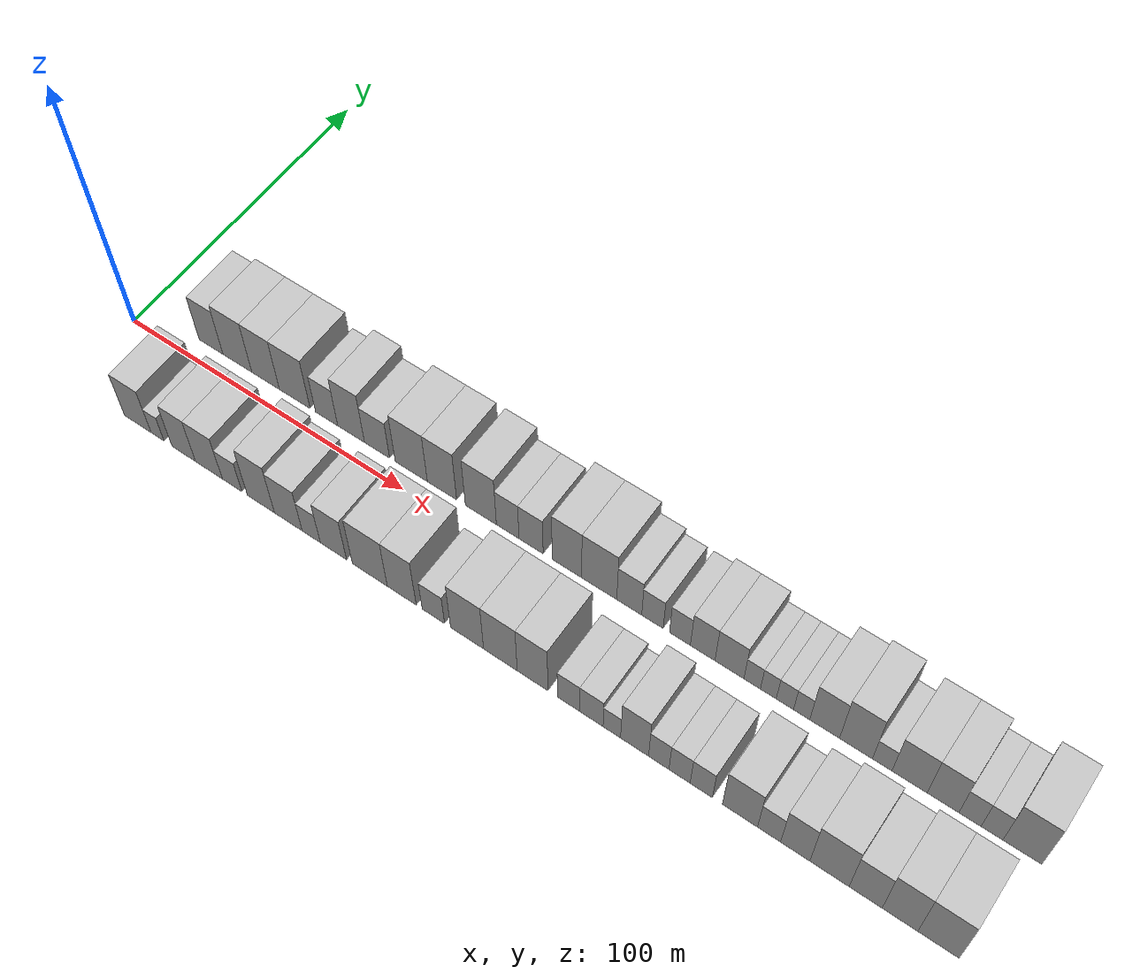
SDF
<sdf version="1.6">
 <world name="default">
  <scene>
   <sky><clouds><speed>12</speed></clouds></sky>
   <ambient>0.4 0.4 0.4 1</ambient>
   <background>0.7 0.7 0.7 1</background>
   <shadows>1</shadows>
  </scene>
  <gravity>0 0 -9.8066</gravity>
  <magnetic_field>6e-06 2.3e-05 -4.2e-05</magnetic_field>
  <physics default="0" name="default_physics" type="ode">
   <ode>
    <solver>
     <type>quick</type>
     <iters>10</iters>
     <sor>1.0</sor>
     <use_dynamic_moi_rescaling>0</use_dynamic_moi_rescaling>
    </solver>
    <constraints>
     <cfm>0</cfm>
     <erp>0.2</erp>
     <contact_max_correcting_vel>100</contact_max_correcting_vel>
     <contact_surface_layer>0.001</contact_surface_layer>
    </constraints>
   </ode>
   <max_step_size>0.004</max_step_size>
   <real_time_factor>1</real_time_factor>
   <real_time_update_rate>250</real_time_update_rate>
  </physics>
  <light name="sun" type="directional">
   <pose>0 0 10 0 0 0</pose>
   <diffuse>0.8 0.8 0.8 1</diffuse>
   <specular>0.2 0.2 0.2 1</specular>
   <attenuation>
    <range>1000</range>
    <constant>0.9</constant>
    <linear>0.01</linear>
    <quadratic>0.001</quadratic>
   </attenuation>
   <direction>-0.5 0.1 -0.9</direction>
  </light>
  <model name="building_1">
   <static>1</static>
   <pose>24.5743 16.0000 0 0.000000 0.000000 1.570796</pose>
   <link name="link">
    <pose>0 0 10.50 0 0 0</pose>
    <collision name="collision"><geometry><box><size>20.0000 9.1486 21.0000</size></box></geometry></collision>
    <visual name="visual">
     <cast_shadows>0</cast_shadows>
     <geometry><box><size>20.0000 9.1486 21.0000</size></box></geometry>
     <material>
      <script>
       <uri>model://HANNAS_wall/materials/scripts</uri>
       <uri>model://HANNAS_wall/materials/textures</uri>
       <name>vrc/HANNAS_wall</name>
      </script>
     </material>
    </visual>
   </link>
  </model>
  <model name="building_2">
   <static>1</static>
   <pose>34.6163 16.0000 0 0.000000 0.000000 1.570796</pose>
   <link name="link">
    <pose>0 0 12.00 0 0 0</pose>
    <collision name="collision"><geometry><box><size>20.0000 10.9354 24.0000</size></box></geometry></collision>
    <visual name="visual">
     <cast_shadows>0</cast_shadows>
     <geometry><box><size>20.0000 10.9354 24.0000</size></box></geometry>
     <material>
      <script>
       <uri>model://HANNAS_wall/materials/scripts</uri>
       <uri>model://HANNAS_wall/materials/textures</uri>
       <name>vrc/HANNAS_wall</name>
      </script>
     </material>
    </visual>
   </link>
  </model>
  <model name="building_3">
   <static>1</static>
   <pose>45.2506 16.0000 0 0.000000 0.000000 1.570796</pose>
   <link name="link">
    <pose>0 0 12.00 0 0 0</pose>
    <collision name="collision"><geometry><box><size>20.0000 10.3332 24.0000</size></box></geometry></collision>
    <visual name="visual">
     <cast_shadows>0</cast_shadows>
     <geometry><box><size>20.0000 10.3332 24.0000</size></box></geometry>
     <material>
      <script>
       <uri>model://HANNAS_wall/materials/scripts</uri>
       <uri>model://HANNAS_wall/materials/textures</uri>
       <name>vrc/HANNAS_wall</name>
      </script>
     </material>
    </visual>
   </link>
  </model>
  <model name="building_4">
   <static>1</static>
   <pose>56.0950 16.0000 0 0.000000 0.000000 1.570796</pose>
   <link name="link">
    <pose>0 0 12.00 0 0 0</pose>
    <collision name="collision"><geometry><box><size>20.0000 11.3557 24.0000</size></box></geometry></collision>
    <visual name="visual">
     <cast_shadows>0</cast_shadows>
     <geometry><box><size>20.0000 11.3557 24.0000</size></box></geometry>
     <material>
      <script>
       <uri>model://HANNAS_wall/materials/scripts</uri>
       <uri>model://HANNAS_wall/materials/textures</uri>
       <name>vrc/HANNAS_wall</name>
      </script>
     </material>
    </visual>
   </link>
  </model>
  <model name="building_5">
   <static>1</static>
   <pose>67.8127 16.0000 0 0.000000 0.000000 1.570796</pose>
   <link name="link">
    <pose>0 0 9.00 0 0 0</pose>
    <collision name="collision"><geometry><box><size>20.0000 8.0796 18.0000</size></box></geometry></collision>
    <visual name="visual">
     <cast_shadows>0</cast_shadows>
     <geometry><box><size>20.0000 8.0796 18.0000</size></box></geometry>
     <material>
      <script>
       <uri>model://HANNAS_wall/materials/scripts</uri>
       <uri>model://HANNAS_wall/materials/textures</uri>
       <name>vrc/HANNAS_wall</name>
      </script>
     </material>
    </visual>
   </link>
  </model>
  <model name="building_6">
   <static>1</static>
   <pose>76.6792 16.0000 0 0.000000 0.000000 1.570796</pose>
   <link name="link">
    <pose>0 0 12.00 0 0 0</pose>
    <collision name="collision"><geometry><box><size>20.0000 9.6535 24.0000</size></box></geometry></collision>
    <visual name="visual">
     <cast_shadows>0</cast_shadows>
     <geometry><box><size>20.0000 9.6535 24.0000</size></box></geometry>
     <material>
      <script>
       <uri>model://HANNAS_wall/materials/scripts</uri>
       <uri>model://HANNAS_wall/materials/textures</uri>
       <name>vrc/HANNAS_wall</name>
      </script>
     </material>
    </visual>
   </link>
  </model>
  <model name="building_7">
   <static>1</static>
   <pose>85.9898 16.0000 0 0.000000 0.000000 1.570796</pose>
   <link name="link">
    <pose>0 0 9.00 0 0 0</pose>
    <collision name="collision"><geometry><box><size>20.0000 8.9678 18.0000</size></box></geometry></collision>
    <visual name="visual">
     <cast_shadows>0</cast_shadows>
     <geometry><box><size>20.0000 8.9678 18.0000</size></box></geometry>
     <material>
      <script>
       <uri>model://HANNAS_wall/materials/scripts</uri>
       <uri>model://HANNAS_wall/materials/textures</uri>
       <name>vrc/HANNAS_wall</name>
      </script>
     </material>
    </visual>
   </link>
  </model>
  <model name="building_8">
   <static>1</static>
   <pose>98.1138 16.0000 0 0.000000 0.000000 1.570796</pose>
   <link name="link">
    <pose>0 0 12.00 0 0 0</pose>
    <collision name="collision"><geometry><box><size>20.0000 11.2802 24.0000</size></box></geometry></collision>
    <visual name="visual">
     <cast_shadows>0</cast_shadows>
     <geometry><box><size>20.0000 11.2802 24.0000</size></box></geometry>
     <material>
      <script>
       <uri>model://HANNAS_wall/materials/scripts</uri>
       <uri>model://HANNAS_wall/materials/textures</uri>
       <name>vrc/HANNAS_wall</name>
      </script>
     </material>
    </visual>
   </link>
  </model>
  <model name="building_9">
   <static>1</static>
   <pose>108.8471 16.0000 0 0.000000 0.000000 1.570796</pose>
   <link name="link">
    <pose>0 0 12.00 0 0 0</pose>
    <collision name="collision"><geometry><box><size>20.0000 10.1864 24.0000</size></box></geometry></collision>
    <visual name="visual">
     <cast_shadows>0</cast_shadows>
     <geometry><box><size>20.0000 10.1864 24.0000</size></box></geometry>
     <material>
      <script>
       <uri>model://HANNAS_wall/materials/scripts</uri>
       <uri>model://HANNAS_wall/materials/textures</uri>
       <name>vrc/HANNAS_wall</name>
      </script>
     </material>
    </visual>
   </link>
  </model>
  <model name="building_10">
   <static>1</static>
   <pose>122.2387 16.0000 0 0.000000 0.000000 1.570796</pose>
   <link name="link">
    <pose>0 0 12.00 0 0 0</pose>
    <collision name="collision"><geometry><box><size>20.0000 10.5969 24.0000</size></box></geometry></collision>
    <visual name="visual">
     <cast_shadows>0</cast_shadows>
     <geometry><box><size>20.0000 10.5969 24.0000</size></box></geometry>
     <material>
      <script>
       <uri>model://HANNAS_wall/materials/scripts</uri>
       <uri>model://HANNAS_wall/materials/textures</uri>
       <name>vrc/HANNAS_wall</name>
      </script>
     </material>
    </visual>
   </link>
  </model>
  <model name="building_11">
   <static>1</static>
   <pose>131.3559 16.0000 0 0.000000 0.000000 1.570796</pose>
   <link name="link">
    <pose>0 0 9.00 0 0 0</pose>
    <collision name="collision"><geometry><box><size>20.0000 7.6374 18.0000</size></box></geometry></collision>
    <visual name="visual">
     <cast_shadows>0</cast_shadows>
     <geometry><box><size>20.0000 7.6374 18.0000</size></box></geometry>
     <material>
      <script>
       <uri>model://HANNAS_wall/materials/scripts</uri>
       <uri>model://HANNAS_wall/materials/textures</uri>
       <name>vrc/HANNAS_wall</name>
      </script>
     </material>
    </visual>
   </link>
  </model>
  <model name="building_12">
   <static>1</static>
   <pose>139.2092 16.0000 0 0.000000 0.000000 1.570796</pose>
   <link name="link">
    <pose>0 0 9.00 0 0 0</pose>
    <collision name="collision"><geometry><box><size>20.0000 8.0692 18.0000</size></box></geometry></collision>
    <visual name="visual">
     <cast_shadows>0</cast_shadows>
     <geometry><box><size>20.0000 8.0692 18.0000</size></box></geometry>
     <material>
      <script>
       <uri>model://HANNAS_wall/materials/scripts</uri>
       <uri>model://HANNAS_wall/materials/textures</uri>
       <name>vrc/HANNAS_wall</name>
      </script>
     </material>
    </visual>
   </link>
  </model>
  <model name="building_13">
   <static>1</static>
   <pose>151.0744 16.0000 0 0.000000 0.000000 1.570796</pose>
   <link name="link">
    <pose>0 0 12.00 0 0 0</pose>
    <collision name="collision"><geometry><box><size>20.0000 9.6613 24.0000</size></box></geometry></collision>
    <visual name="visual">
     <cast_shadows>0</cast_shadows>
     <geometry><box><size>20.0000 9.6613 24.0000</size></box></geometry>
     <material>
      <script>
       <uri>model://HANNAS_wall/materials/scripts</uri>
       <uri>model://HANNAS_wall/materials/textures</uri>
       <name>vrc/HANNAS_wall</name>
      </script>
     </material>
    </visual>
   </link>
  </model>
  <model name="building_14">
   <static>1</static>
   <pose>161.6284 16.0000 0 0.000000 0.000000 1.570796</pose>
   <link name="link">
    <pose>0 0 12.00 0 0 0</pose>
    <collision name="collision"><geometry><box><size>20.0000 11.4467 24.0000</size></box></geometry></collision>
    <visual name="visual">
     <cast_shadows>0</cast_shadows>
     <geometry><box><size>20.0000 11.4467 24.0000</size></box></geometry>
     <material>
      <script>
       <uri>model://HANNAS_wall/materials/scripts</uri>
       <uri>model://HANNAS_wall/materials/textures</uri>
       <name>vrc/HANNAS_wall</name>
      </script>
     </material>
    </visual>
   </link>
  </model>
  <model name="building_15">
   <static>1</static>
   <pose>171.3655 16.0000 0 0.000000 0.000000 1.570796</pose>
   <link name="link">
    <pose>0 0 9.00 0 0 0</pose>
    <collision name="collision"><geometry><box><size>20.0000 8.0276 18.0000</size></box></geometry></collision>
    <visual name="visual">
     <cast_shadows>0</cast_shadows>
     <geometry><box><size>20.0000 8.0276 18.0000</size></box></geometry>
     <material>
      <script>
       <uri>model://HANNAS_wall/materials/scripts</uri>
       <uri>model://HANNAS_wall/materials/textures</uri>
       <name>vrc/HANNAS_wall</name>
      </script>
     </material>
    </visual>
   </link>
  </model>
  <model name="building_16">
   <static>1</static>
   <pose>178.7961 16.0000 0 0.000000 0.000000 1.570796</pose>
   <link name="link">
    <pose>0 0 7.50 0 0 0</pose>
    <collision name="collision"><geometry><box><size>20.0000 6.8335 15.0000</size></box></geometry></collision>
    <visual name="visual">
     <cast_shadows>0</cast_shadows>
     <geometry><box><size>20.0000 6.8335 15.0000</size></box></geometry>
     <material>
      <script>
       <uri>model://HANNAS_wall/materials/scripts</uri>
       <uri>model://HANNAS_wall/materials/textures</uri>
       <name>vrc/HANNAS_wall</name>
      </script>
     </material>
    </visual>
   </link>
  </model>
  <model name="building_17">
   <static>1</static>
   <pose>187.4880 16.0000 0 0.000000 0.000000 1.570796</pose>
   <link name="link">
    <pose>0 0 7.50 0 0 0</pose>
    <collision name="collision"><geometry><box><size>20.0000 6.5502 15.0000</size></box></geometry></collision>
    <visual name="visual">
     <cast_shadows>0</cast_shadows>
     <geometry><box><size>20.0000 6.5502 15.0000</size></box></geometry>
     <material>
      <script>
       <uri>model://HANNAS_wall/materials/scripts</uri>
       <uri>model://HANNAS_wall/materials/textures</uri>
       <name>vrc/HANNAS_wall</name>
      </script>
     </material>
    </visual>
   </link>
  </model>
  <model name="building_18">
   <static>1</static>
   <pose>194.6058 16.0000 0 0.000000 0.000000 1.570796</pose>
   <link name="link">
    <pose>0 0 9.00 0 0 0</pose>
    <collision name="collision"><geometry><box><size>20.0000 7.6855 18.0000</size></box></geometry></collision>
    <visual name="visual">
     <cast_shadows>0</cast_shadows>
     <geometry><box><size>20.0000 7.6855 18.0000</size></box></geometry>
     <material>
      <script>
       <uri>model://HANNAS_wall/materials/scripts</uri>
       <uri>model://HANNAS_wall/materials/textures</uri>
       <name>vrc/HANNAS_wall</name>
      </script>
     </material>
    </visual>
   </link>
  </model>
  <model name="building_19">
   <static>1</static>
   <pose>202.9166 16.0000 0 0.000000 0.000000 1.570796</pose>
   <link name="link">
    <pose>0 0 9.00 0 0 0</pose>
    <collision name="collision"><geometry><box><size>20.0000 8.9360 18.0000</size></box></geometry></collision>
    <visual name="visual">
     <cast_shadows>0</cast_shadows>
     <geometry><box><size>20.0000 8.9360 18.0000</size></box></geometry>
     <material>
      <script>
       <uri>model://HANNAS_wall/materials/scripts</uri>
       <uri>model://HANNAS_wall/materials/textures</uri>
       <name>vrc/HANNAS_wall</name>
      </script>
     </material>
    </visual>
   </link>
  </model>
  <model name="building_20">
   <static>1</static>
   <pose>209.9119 16.0000 0 0.000000 0.000000 1.570796</pose>
   <link name="link">
    <pose>0 0 6.00 0 0 0</pose>
    <collision name="collision"><geometry><box><size>20.0000 5.0545 12.0000</size></box></geometry></collision>
    <visual name="visual">
     <cast_shadows>0</cast_shadows>
     <geometry><box><size>20.0000 5.0545 12.0000</size></box></geometry>
     <material>
      <script>
       <uri>model://HANNAS_wall/materials/scripts</uri>
       <uri>model://HANNAS_wall/materials/textures</uri>
       <name>vrc/HANNAS_wall</name>
      </script>
     </material>
    </visual>
   </link>
  </model>
  <model name="building_21">
   <static>1</static>
   <pose>214.8417 16.0000 0 0.000000 0.000000 1.570796</pose>
   <link name="link">
    <pose>0 0 6.00 0 0 0</pose>
    <collision name="collision"><geometry><box><size>20.0000 4.8051 12.0000</size></box></geometry></collision>
    <visual name="visual">
     <cast_shadows>0</cast_shadows>
     <geometry><box><size>20.0000 4.8051 12.0000</size></box></geometry>
     <material>
      <script>
       <uri>model://HANNAS_wall/materials/scripts</uri>
       <uri>model://HANNAS_wall/materials/textures</uri>
       <name>vrc/HANNAS_wall</name>
      </script>
     </material>
    </visual>
   </link>
  </model>
  <model name="building_22">
   <static>1</static>
   <pose>219.8590 16.0000 0 0.000000 0.000000 1.570796</pose>
   <link name="link">
    <pose>0 0 6.00 0 0 0</pose>
    <collision name="collision"><geometry><box><size>20.0000 5.2297 12.0000</size></box></geometry></collision>
    <visual name="visual">
     <cast_shadows>0</cast_shadows>
     <geometry><box><size>20.0000 5.2297 12.0000</size></box></geometry>
     <material>
      <script>
       <uri>model://HANNAS_wall/materials/scripts</uri>
       <uri>model://HANNAS_wall/materials/textures</uri>
       <name>vrc/HANNAS_wall</name>
      </script>
     </material>
    </visual>
   </link>
  </model>
  <model name="building_23">
   <static>1</static>
   <pose>224.9013 16.0000 0 0.000000 0.000000 1.570796</pose>
   <link name="link">
    <pose>0 0 6.00 0 0 0</pose>
    <collision name="collision"><geometry><box><size>20.0000 4.8548 12.0000</size></box></geometry></collision>
    <visual name="visual">
     <cast_shadows>0</cast_shadows>
     <geometry><box><size>20.0000 4.8548 12.0000</size></box></geometry>
     <material>
      <script>
       <uri>model://HANNAS_wall/materials/scripts</uri>
       <uri>model://HANNAS_wall/materials/textures</uri>
       <name>vrc/HANNAS_wall</name>
      </script>
     </material>
    </visual>
   </link>
  </model>
  <model name="building_24">
   <static>1</static>
   <pose>231.7651 16.0000 0 0.000000 0.000000 1.570796</pose>
   <link name="link">
    <pose>0 0 10.50 0 0 0</pose>
    <collision name="collision"><geometry><box><size>20.0000 8.8729 21.0000</size></box></geometry></collision>
    <visual name="visual">
     <cast_shadows>0</cast_shadows>
     <geometry><box><size>20.0000 8.8729 21.0000</size></box></geometry>
     <material>
      <script>
       <uri>model://HANNAS_wall/materials/scripts</uri>
       <uri>model://HANNAS_wall/materials/textures</uri>
       <name>vrc/HANNAS_wall</name>
      </script>
     </material>
    </visual>
   </link>
  </model>
  <model name="building_25">
   <static>1</static>
   <pose>241.0345 16.0000 0 0.000000 0.000000 1.570796</pose>
   <link name="link">
    <pose>0 0 12.00 0 0 0</pose>
    <collision name="collision"><geometry><box><size>20.0000 9.6660 24.0000</size></box></geometry></collision>
    <visual name="visual">
     <cast_shadows>0</cast_shadows>
     <geometry><box><size>20.0000 9.6660 24.0000</size></box></geometry>
     <material>
      <script>
       <uri>model://HANNAS_wall/materials/scripts</uri>
       <uri>model://HANNAS_wall/materials/textures</uri>
       <name>vrc/HANNAS_wall</name>
      </script>
     </material>
    </visual>
   </link>
  </model>
  <model name="building_26">
   <static>1</static>
   <pose>248.7030 16.0000 0 0.000000 0.000000 1.570796</pose>
   <link name="link">
    <pose>0 0 6.00 0 0 0</pose>
    <collision name="collision"><geometry><box><size>20.0000 5.6709 12.0000</size></box></geometry></collision>
    <visual name="visual">
     <cast_shadows>0</cast_shadows>
     <geometry><box><size>20.0000 5.6709 12.0000</size></box></geometry>
     <material>
      <script>
       <uri>model://HANNAS_wall/materials/scripts</uri>
       <uri>model://HANNAS_wall/materials/textures</uri>
       <name>vrc/HANNAS_wall</name>
      </script>
     </material>
    </visual>
   </link>
  </model>
  <model name="building_27">
   <static>1</static>
   <pose>256.6299 16.0000 0 0.000000 0.000000 1.570796</pose>
   <link name="link">
    <pose>0 0 10.50 0 0 0</pose>
    <collision name="collision"><geometry><box><size>20.0000 10.1831 21.0000</size></box></geometry></collision>
    <visual name="visual">
     <cast_shadows>0</cast_shadows>
     <geometry><box><size>20.0000 10.1831 21.0000</size></box></geometry>
     <material>
      <script>
       <uri>model://HANNAS_wall/materials/scripts</uri>
       <uri>model://HANNAS_wall/materials/textures</uri>
       <name>vrc/HANNAS_wall</name>
      </script>
     </material>
    </visual>
   </link>
  </model>
  <model name="building_28">
   <static>1</static>
   <pose>266.2097 16.0000 0 0.000000 0.000000 1.570796</pose>
   <link name="link">
    <pose>0 0 10.50 0 0 0</pose>
    <collision name="collision"><geometry><box><size>20.0000 8.9764 21.0000</size></box></geometry></collision>
    <visual name="visual">
     <cast_shadows>0</cast_shadows>
     <geometry><box><size>20.0000 8.9764 21.0000</size></box></geometry>
     <material>
      <script>
       <uri>model://HANNAS_wall/materials/scripts</uri>
       <uri>model://HANNAS_wall/materials/textures</uri>
       <name>vrc/HANNAS_wall</name>
      </script>
     </material>
    </visual>
   </link>
  </model>
  <model name="building_29">
   <static>1</static>
   <pose>273.8102 16.0000 0 0.000000 0.000000 1.570796</pose>
   <link name="link">
    <pose>0 0 7.50 0 0 0</pose>
    <collision name="collision"><geometry><box><size>20.0000 6.2247 15.0000</size></box></geometry></collision>
    <visual name="visual">
     <cast_shadows>0</cast_shadows>
     <geometry><box><size>20.0000 6.2247 15.0000</size></box></geometry>
     <material>
      <script>
       <uri>model://HANNAS_wall/materials/scripts</uri>
       <uri>model://HANNAS_wall/materials/textures</uri>
       <name>vrc/HANNAS_wall</name>
      </script>
     </material>
    </visual>
   </link>
  </model>
  <model name="building_30">
   <static>1</static>
   <pose>279.9654 16.0000 0 0.000000 0.000000 1.570796</pose>
   <link name="link">
    <pose>0 0 7.50 0 0 0</pose>
    <collision name="collision"><geometry><box><size>20.0000 6.0856 15.0000</size></box></geometry></collision>
    <visual name="visual">
     <cast_shadows>0</cast_shadows>
     <geometry><box><size>20.0000 6.0856 15.0000</size></box></geometry>
     <material>
      <script>
       <uri>model://HANNAS_wall/materials/scripts</uri>
       <uri>model://HANNAS_wall/materials/textures</uri>
       <name>vrc/HANNAS_wall</name>
      </script>
     </material>
    </visual>
   </link>
  </model>
  <model name="building_31">
   <static>1</static>
   <pose>288.3852 16.0000 0 0.000000 0.000000 1.570796</pose>
   <link name="link">
    <pose>0 0 12.00 0 0 0</pose>
    <collision name="collision"><geometry><box><size>20.0000 10.7540 24.0000</size></box></geometry></collision>
    <visual name="visual">
     <cast_shadows>0</cast_shadows>
     <geometry><box><size>20.0000 10.7540 24.0000</size></box></geometry>
     <material>
      <script>
       <uri>model://HANNAS_wall/materials/scripts</uri>
       <uri>model://HANNAS_wall/materials/textures</uri>
       <name>vrc/HANNAS_wall</name>
      </script>
     </material>
    </visual>
   </link>
  </model>
  <model name="building_32">
   <static>1</static>
   <pose>25.0287 -16.0000 0 0.000000 0.000000 1.570796</pose>
   <link name="link">
    <pose>0 0 10.50 0 0 0</pose>
    <collision name="collision"><geometry><box><size>20.0000 10.0574 21.0000</size></box></geometry></collision>
    <visual name="visual">
     <cast_shadows>0</cast_shadows>
     <geometry><box><size>20.0000 10.0574 21.0000</size></box></geometry>
     <material>
      <script>
       <uri>model://HANNAS_wall/materials/scripts</uri>
       <uri>model://HANNAS_wall/materials/textures</uri>
       <name>vrc/HANNAS_wall</name>
      </script>
     </material>
    </visual>
   </link>
  </model>
  <model name="building_33">
   <static>1</static>
   <pose>32.4772 -16.0000 0 0.000000 0.000000 1.570796</pose>
   <link name="link">
    <pose>0 0 6.00 0 0 0</pose>
    <collision name="collision"><geometry><box><size>20.0000 4.8395 12.0000</size></box></geometry></collision>
    <visual name="visual">
     <cast_shadows>0</cast_shadows>
     <geometry><box><size>20.0000 4.8395 12.0000</size></box></geometry>
     <material>
      <script>
       <uri>model://HANNAS_wall/materials/scripts</uri>
       <uri>model://HANNAS_wall/materials/textures</uri>
       <name>vrc/HANNAS_wall</name>
      </script>
     </material>
    </visual>
   </link>
  </model>
  <model name="building_34">
   <static>1</static>
   <pose>42.2672 -16.0000 0 0.000000 0.000000 1.570796</pose>
   <link name="link">
    <pose>0 0 10.50 0 0 0</pose>
    <collision name="collision"><geometry><box><size>20.0000 8.7404 21.0000</size></box></geometry></collision>
    <visual name="visual">
     <cast_shadows>0</cast_shadows>
     <geometry><box><size>20.0000 8.7404 21.0000</size></box></geometry>
     <material>
      <script>
       <uri>model://HANNAS_wall/materials/scripts</uri>
       <uri>model://HANNAS_wall/materials/textures</uri>
       <name>vrc/HANNAS_wall</name>
      </script>
     </material>
    </visual>
   </link>
  </model>
  <model name="building_35">
   <static>1</static>
   <pose>51.5678 -16.0000 0 0.000000 0.000000 1.570796</pose>
   <link name="link">
    <pose>0 0 10.50 0 0 0</pose>
    <collision name="collision"><geometry><box><size>20.0000 9.8607 21.0000</size></box></geometry></collision>
    <visual name="visual">
     <cast_shadows>0</cast_shadows>
     <geometry><box><size>20.0000 9.8607 21.0000</size></box></geometry>
     <material>
      <script>
       <uri>model://HANNAS_wall/materials/scripts</uri>
       <uri>model://HANNAS_wall/materials/textures</uri>
       <name>vrc/HANNAS_wall</name>
      </script>
     </material>
    </visual>
   </link>
  </model>
  <model name="building_36">
   <static>1</static>
   <pose>60.0550 -16.0000 0 0.000000 0.000000 1.570796</pose>
   <link name="link">
    <pose>0 0 7.50 0 0 0</pose>
    <collision name="collision"><geometry><box><size>20.0000 7.1137 15.0000</size></box></geometry></collision>
    <visual name="visual">
     <cast_shadows>0</cast_shadows>
     <geometry><box><size>20.0000 7.1137 15.0000</size></box></geometry>
     <material>
      <script>
       <uri>model://HANNAS_wall/materials/scripts</uri>
       <uri>model://HANNAS_wall/materials/textures</uri>
       <name>vrc/HANNAS_wall</name>
      </script>
     </material>
    </visual>
   </link>
  </model>
  <model name="building_37">
   <static>1</static>
   <pose>70.4804 -16.0000 0 0.000000 0.000000 1.570796</pose>
   <link name="link">
    <pose>0 0 12.00 0 0 0</pose>
    <collision name="collision"><geometry><box><size>20.0000 9.7371 24.0000</size></box></geometry></collision>
    <visual name="visual">
     <cast_shadows>0</cast_shadows>
     <geometry><box><size>20.0000 9.7371 24.0000</size></box></geometry>
     <material>
      <script>
       <uri>model://HANNAS_wall/materials/scripts</uri>
       <uri>model://HANNAS_wall/materials/textures</uri>
       <name>vrc/HANNAS_wall</name>
      </script>
     </material>
    </visual>
   </link>
  </model>
  <model name="building_38">
   <static>1</static>
   <pose>80.2572 -16.0000 0 0.000000 0.000000 1.570796</pose>
   <link name="link">
    <pose>0 0 10.50 0 0 0</pose>
    <collision name="collision"><geometry><box><size>20.0000 9.8166 21.0000</size></box></geometry></collision>
    <visual name="visual">
     <cast_shadows>0</cast_shadows>
     <geometry><box><size>20.0000 9.8166 21.0000</size></box></geometry>
     <material>
      <script>
       <uri>model://HANNAS_wall/materials/scripts</uri>
       <uri>model://HANNAS_wall/materials/textures</uri>
       <name>vrc/HANNAS_wall</name>
      </script>
     </material>
    </visual>
   </link>
  </model>
  <model name="building_39">
   <static>1</static>
   <pose>88.3468 -16.0000 0 0.000000 0.000000 1.570796</pose>
   <link name="link">
    <pose>0 0 7.50 0 0 0</pose>
    <collision name="collision"><geometry><box><size>20.0000 6.3625 15.0000</size></box></geometry></collision>
    <visual name="visual">
     <cast_shadows>0</cast_shadows>
     <geometry><box><size>20.0000 6.3625 15.0000</size></box></geometry>
     <material>
      <script>
       <uri>model://HANNAS_wall/materials/scripts</uri>
       <uri>model://HANNAS_wall/materials/textures</uri>
       <name>vrc/HANNAS_wall</name>
      </script>
     </material>
    </visual>
   </link>
  </model>
  <model name="building_40">
   <static>1</static>
   <pose>96.1033 -16.0000 0 0.000000 0.000000 1.570796</pose>
   <link name="link">
    <pose>0 0 10.50 0 0 0</pose>
    <collision name="collision"><geometry><box><size>20.0000 9.1506 21.0000</size></box></geometry></collision>
    <visual name="visual">
     <cast_shadows>0</cast_shadows>
     <geometry><box><size>20.0000 9.1506 21.0000</size></box></geometry>
     <material>
      <script>
       <uri>model://HANNAS_wall/materials/scripts</uri>
       <uri>model://HANNAS_wall/materials/textures</uri>
       <name>vrc/HANNAS_wall</name>
      </script>
     </material>
    </visual>
   </link>
  </model>
  <model name="building_41">
   <static>1</static>
   <pose>108.6661 -16.0000 0 0.000000 0.000000 1.570796</pose>
   <link name="link">
    <pose>0 0 12.00 0 0 0</pose>
    <collision name="collision"><geometry><box><size>20.0000 11.9750 24.0000</size></box></geometry></collision>
    <visual name="visual">
     <cast_shadows>0</cast_shadows>
     <geometry><box><size>20.0000 11.9750 24.0000</size></box></geometry>
     <material>
      <script>
       <uri>model://HANNAS_wall/materials/scripts</uri>
       <uri>model://HANNAS_wall/materials/textures</uri>
       <name>vrc/HANNAS_wall</name>
      </script>
     </material>
    </visual>
   </link>
  </model>
  <model name="building_42">
   <static>1</static>
   <pose>119.5431 -16.0000 0 0.000000 0.000000 1.570796</pose>
   <link name="link">
    <pose>0 0 12.00 0 0 0</pose>
    <collision name="collision"><geometry><box><size>20.0000 9.7791 24.0000</size></box></geometry></collision>
    <visual name="visual">
     <cast_shadows>0</cast_shadows>
     <geometry><box><size>20.0000 9.7791 24.0000</size></box></geometry>
     <material>
      <script>
       <uri>model://HANNAS_wall/materials/scripts</uri>
       <uri>model://HANNAS_wall/materials/textures</uri>
       <name>vrc/HANNAS_wall</name>
      </script>
     </material>
    </visual>
   </link>
  </model>
  <model name="building_43">
   <static>1</static>
   <pose>130.1669 -16.0000 0 0.000000 0.000000 1.570796</pose>
   <link name="link">
    <pose>0 0 7.50 0 0 0</pose>
    <collision name="collision"><geometry><box><size>20.0000 7.4684 15.0000</size></box></geometry></collision>
    <visual name="visual">
     <cast_shadows>0</cast_shadows>
     <geometry><box><size>20.0000 7.4684 15.0000</size></box></geometry>
     <material>
      <script>
       <uri>model://HANNAS_wall/materials/scripts</uri>
       <uri>model://HANNAS_wall/materials/textures</uri>
       <name>vrc/HANNAS_wall</name>
      </script>
     </material>
    </visual>
   </link>
  </model>
  <model name="building_44">
   <static>1</static>
   <pose>141.3107 -16.0000 0 0.000000 0.000000 1.570796</pose>
   <link name="link">
    <pose>0 0 12.00 0 0 0</pose>
    <collision name="collision"><geometry><box><size>20.0000 10.8192 24.0000</size></box></geometry></collision>
    <visual name="visual">
     <cast_shadows>0</cast_shadows>
     <geometry><box><size>20.0000 10.8192 24.0000</size></box></geometry>
     <material>
      <script>
       <uri>model://HANNAS_wall/materials/scripts</uri>
       <uri>model://HANNAS_wall/materials/textures</uri>
       <name>vrc/HANNAS_wall</name>
      </script>
     </material>
    </visual>
   </link>
  </model>
  <model name="building_45">
   <static>1</static>
   <pose>152.1866 -16.0000 0 0.000000 0.000000 1.570796</pose>
   <link name="link">
    <pose>0 0 12.00 0 0 0</pose>
    <collision name="collision"><geometry><box><size>20.0000 10.9327 24.0000</size></box></geometry></collision>
    <visual name="visual">
     <cast_shadows>0</cast_shadows>
     <geometry><box><size>20.0000 10.9327 24.0000</size></box></geometry>
     <material>
      <script>
       <uri>model://HANNAS_wall/materials/scripts</uri>
       <uri>model://HANNAS_wall/materials/textures</uri>
       <name>vrc/HANNAS_wall</name>
      </script>
     </material>
    </visual>
   </link>
  </model>
  <model name="building_46">
   <static>1</static>
   <pose>162.5747 -16.0000 0 0.000000 0.000000 1.570796</pose>
   <link name="link">
    <pose>0 0 12.00 0 0 0</pose>
    <collision name="collision"><geometry><box><size>20.0000 9.8435 24.0000</size></box></geometry></collision>
    <visual name="visual">
     <cast_shadows>0</cast_shadows>
     <geometry><box><size>20.0000 9.8435 24.0000</size></box></geometry>
     <material>
      <script>
       <uri>model://HANNAS_wall/materials/scripts</uri>
       <uri>model://HANNAS_wall/materials/textures</uri>
       <name>vrc/HANNAS_wall</name>
      </script>
     </material>
    </visual>
   </link>
  </model>
  <model name="building_47">
   <static>1</static>
   <pose>173.9678 -16.0000 0 0.000000 0.000000 1.570796</pose>
   <link name="link">
    <pose>0 0 7.50 0 0 0</pose>
    <collision name="collision"><geometry><box><size>20.0000 6.9427 15.0000</size></box></geometry></collision>
    <visual name="visual">
     <cast_shadows>0</cast_shadows>
     <geometry><box><size>20.0000 6.9427 15.0000</size></box></geometry>
     <material>
      <script>
       <uri>model://HANNAS_wall/materials/scripts</uri>
       <uri>model://HANNAS_wall/materials/textures</uri>
       <name>vrc/HANNAS_wall</name>
      </script>
     </material>
    </visual>
   </link>
  </model>
  <model name="building_48">
   <static>1</static>
   <pose>181.1269 -16.0000 0 0.000000 0.000000 1.570796</pose>
   <link name="link">
    <pose>0 0 7.50 0 0 0</pose>
    <collision name="collision"><geometry><box><size>20.0000 7.3755 15.0000</size></box></geometry></collision>
    <visual name="visual">
     <cast_shadows>0</cast_shadows>
     <geometry><box><size>20.0000 7.3755 15.0000</size></box></geometry>
     <material>
      <script>
       <uri>model://HANNAS_wall/materials/scripts</uri>
       <uri>model://HANNAS_wall/materials/textures</uri>
       <name>vrc/HANNAS_wall</name>
      </script>
     </material>
    </visual>
   </link>
  </model>
  <model name="building_49">
   <static>1</static>
   <pose>187.5126 -16.0000 0 0.000000 0.000000 1.570796</pose>
   <link name="link">
    <pose>0 0 6.00 0 0 0</pose>
    <collision name="collision"><geometry><box><size>20.0000 5.3957 12.0000</size></box></geometry></collision>
    <visual name="visual">
     <cast_shadows>0</cast_shadows>
     <geometry><box><size>20.0000 5.3957 12.0000</size></box></geometry>
     <material>
      <script>
       <uri>model://HANNAS_wall/materials/scripts</uri>
       <uri>model://HANNAS_wall/materials/textures</uri>
       <name>vrc/HANNAS_wall</name>
      </script>
     </material>
    </visual>
   </link>
  </model>
  <model name="building_50">
   <static>1</static>
   <pose>194.5124 -16.0000 0 0.000000 0.000000 1.570796</pose>
   <link name="link">
    <pose>0 0 10.50 0 0 0</pose>
    <collision name="collision"><geometry><box><size>20.0000 8.6040 21.0000</size></box></geometry></collision>
    <visual name="visual">
     <cast_shadows>0</cast_shadows>
     <geometry><box><size>20.0000 8.6040 21.0000</size></box></geometry>
     <material>
      <script>
       <uri>model://HANNAS_wall/materials/scripts</uri>
       <uri>model://HANNAS_wall/materials/textures</uri>
       <name>vrc/HANNAS_wall</name>
      </script>
     </material>
    </visual>
   </link>
  </model>
  <model name="building_51">
   <static>1</static>
   <pose>201.9199 -16.0000 0 0.000000 0.000000 1.570796</pose>
   <link name="link">
    <pose>0 0 7.50 0 0 0</pose>
    <collision name="collision"><geometry><box><size>20.0000 6.2108 15.0000</size></box></geometry></collision>
    <visual name="visual">
     <cast_shadows>0</cast_shadows>
     <geometry><box><size>20.0000 6.2108 15.0000</size></box></geometry>
     <material>
      <script>
       <uri>model://HANNAS_wall/materials/scripts</uri>
       <uri>model://HANNAS_wall/materials/textures</uri>
       <name>vrc/HANNAS_wall</name>
      </script>
     </material>
    </visual>
   </link>
  </model>
  <model name="building_52">
   <static>1</static>
   <pose>208.2130 -16.0000 0 0.000000 0.000000 1.570796</pose>
   <link name="link">
    <pose>0 0 7.50 0 0 0</pose>
    <collision name="collision"><geometry><box><size>20.0000 6.3754 15.0000</size></box></geometry></collision>
    <visual name="visual">
     <cast_shadows>0</cast_shadows>
     <geometry><box><size>20.0000 6.3754 15.0000</size></box></geometry>
     <material>
      <script>
       <uri>model://HANNAS_wall/materials/scripts</uri>
       <uri>model://HANNAS_wall/materials/textures</uri>
       <name>vrc/HANNAS_wall</name>
      </script>
     </material>
    </visual>
   </link>
  </model>
  <model name="building_53">
   <static>1</static>
   <pose>214.7295 -16.0000 0 0.000000 0.000000 1.570796</pose>
   <link name="link">
    <pose>0 0 7.50 0 0 0</pose>
    <collision name="collision"><geometry><box><size>20.0000 6.6577 15.0000</size></box></geometry></collision>
    <visual name="visual">
     <cast_shadows>0</cast_shadows>
     <geometry><box><size>20.0000 6.6577 15.0000</size></box></geometry>
     <material>
      <script>
       <uri>model://HANNAS_wall/materials/scripts</uri>
       <uri>model://HANNAS_wall/materials/textures</uri>
       <name>vrc/HANNAS_wall</name>
      </script>
     </material>
    </visual>
   </link>
  </model>
  <model name="building_54">
   <static>1</static>
   <pose>226.2147 -16.0000 0 0.000000 0.000000 1.570796</pose>
   <link name="link">
    <pose>0 0 10.50 0 0 0</pose>
    <collision name="collision"><geometry><box><size>20.0000 10.3127 21.0000</size></box></geometry></collision>
    <visual name="visual">
     <cast_shadows>0</cast_shadows>
     <geometry><box><size>20.0000 10.3127 21.0000</size></box></geometry>
     <material>
      <script>
       <uri>model://HANNAS_wall/materials/scripts</uri>
       <uri>model://HANNAS_wall/materials/textures</uri>
       <name>vrc/HANNAS_wall</name>
      </script>
     </material>
    </visual>
   </link>
  </model>
  <model name="building_55">
   <static>1</static>
   <pose>234.7326 -16.0000 0 0.000000 0.000000 1.570796</pose>
   <link name="link">
    <pose>0 0 7.50 0 0 0</pose>
    <collision name="collision"><geometry><box><size>20.0000 6.7232 15.0000</size></box></geometry></collision>
    <visual name="visual">
     <cast_shadows>0</cast_shadows>
     <geometry><box><size>20.0000 6.7232 15.0000</size></box></geometry>
     <material>
      <script>
       <uri>model://HANNAS_wall/materials/scripts</uri>
       <uri>model://HANNAS_wall/materials/textures</uri>
       <name>vrc/HANNAS_wall</name>
      </script>
     </material>
    </visual>
   </link>
  </model>
  <model name="building_56">
   <static>1</static>
   <pose>242.3062 -16.0000 0 0.000000 0.000000 1.570796</pose>
   <link name="link">
    <pose>0 0 10.50 0 0 0</pose>
    <collision name="collision"><geometry><box><size>20.0000 8.4240 21.0000</size></box></geometry></collision>
    <visual name="visual">
     <cast_shadows>0</cast_shadows>
     <geometry><box><size>20.0000 8.4240 21.0000</size></box></geometry>
     <material>
      <script>
       <uri>model://HANNAS_wall/materials/scripts</uri>
       <uri>model://HANNAS_wall/materials/textures</uri>
       <name>vrc/HANNAS_wall</name>
      </script>
     </material>
    </visual>
   </link>
  </model>
  <model name="building_57">
   <static>1</static>
   <pose>252.1002 -16.0000 0 0.000000 0.000000 1.570796</pose>
   <link name="link">
    <pose>0 0 12.00 0 0 0</pose>
    <collision name="collision"><geometry><box><size>20.0000 11.1639 24.0000</size></box></geometry></collision>
    <visual name="visual">
     <cast_shadows>0</cast_shadows>
     <geometry><box><size>20.0000 11.1639 24.0000</size></box></geometry>
     <material>
      <script>
       <uri>model://HANNAS_wall/materials/scripts</uri>
       <uri>model://HANNAS_wall/materials/textures</uri>
       <name>vrc/HANNAS_wall</name>
      </script>
     </material>
    </visual>
   </link>
  </model>
  <model name="building_58">
   <static>1</static>
   <pose>262.3147 -16.0000 0 0.000000 0.000000 1.570796</pose>
   <link name="link">
    <pose>0 0 10.50 0 0 0</pose>
    <collision name="collision"><geometry><box><size>20.0000 9.2650 21.0000</size></box></geometry></collision>
    <visual name="visual">
     <cast_shadows>0</cast_shadows>
     <geometry><box><size>20.0000 9.2650 21.0000</size></box></geometry>
     <material>
      <script>
       <uri>model://HANNAS_wall/materials/scripts</uri>
       <uri>model://HANNAS_wall/materials/textures</uri>
       <name>vrc/HANNAS_wall</name>
      </script>
     </material>
    </visual>
   </link>
  </model>
  <model name="building_59">
   <static>1</static>
   <pose>271.8779 -16.0000 0 0.000000 0.000000 1.570796</pose>
   <link name="link">
    <pose>0 0 12.00 0 0 0</pose>
    <collision name="collision"><geometry><box><size>20.0000 9.8615 24.0000</size></box></geometry></collision>
    <visual name="visual">
     <cast_shadows>0</cast_shadows>
     <geometry><box><size>20.0000 9.8615 24.0000</size></box></geometry>
     <material>
      <script>
       <uri>model://HANNAS_wall/materials/scripts</uri>
       <uri>model://HANNAS_wall/materials/textures</uri>
       <name>vrc/HANNAS_wall</name>
      </script>
     </material>
    </visual>
   </link>
  </model>
  <model name="building_60">
   <static>1</static>
   <pose>282.4583 -16.0000 0 0.000000 0.000000 1.570796</pose>
   <link name="link">
    <pose>0 0 12.00 0 0 0</pose>
    <collision name="collision"><geometry><box><size>20.0000 11.2992 24.0000</size></box></geometry></collision>
    <visual name="visual">
     <cast_shadows>0</cast_shadows>
     <geometry><box><size>20.0000 11.2992 24.0000</size></box></geometry>
     <material>
      <script>
       <uri>model://HANNAS_wall/materials/scripts</uri>
       <uri>model://HANNAS_wall/materials/textures</uri>
       <name>vrc/HANNAS_wall</name>
      </script>
     </material>
    </visual>
   </link>
  </model>
 </world>
</sdf>
